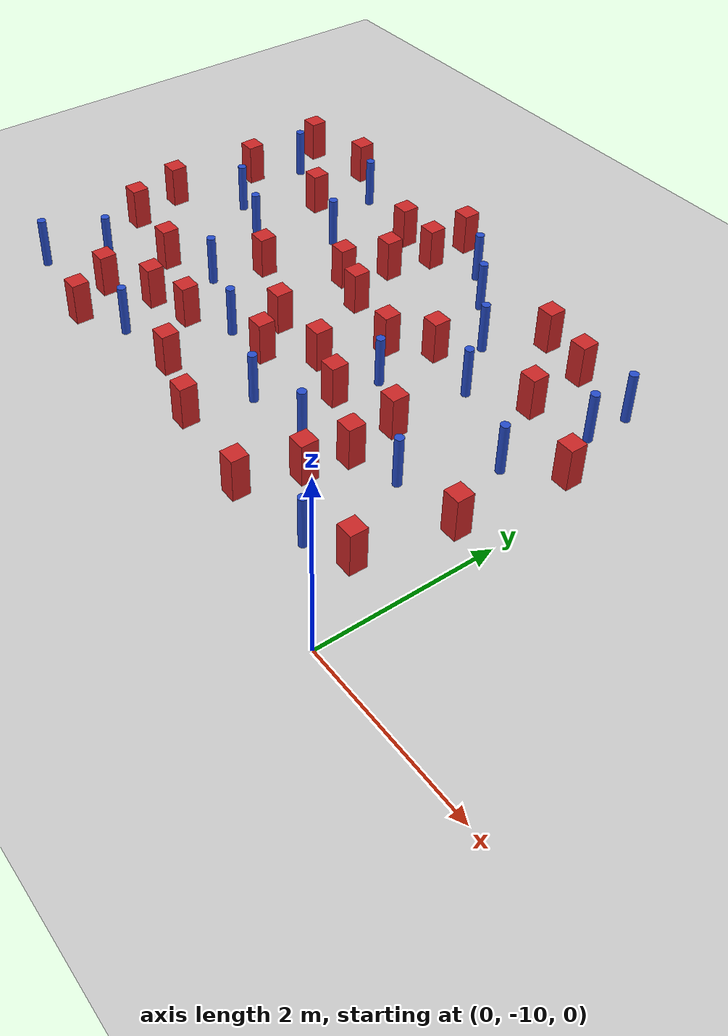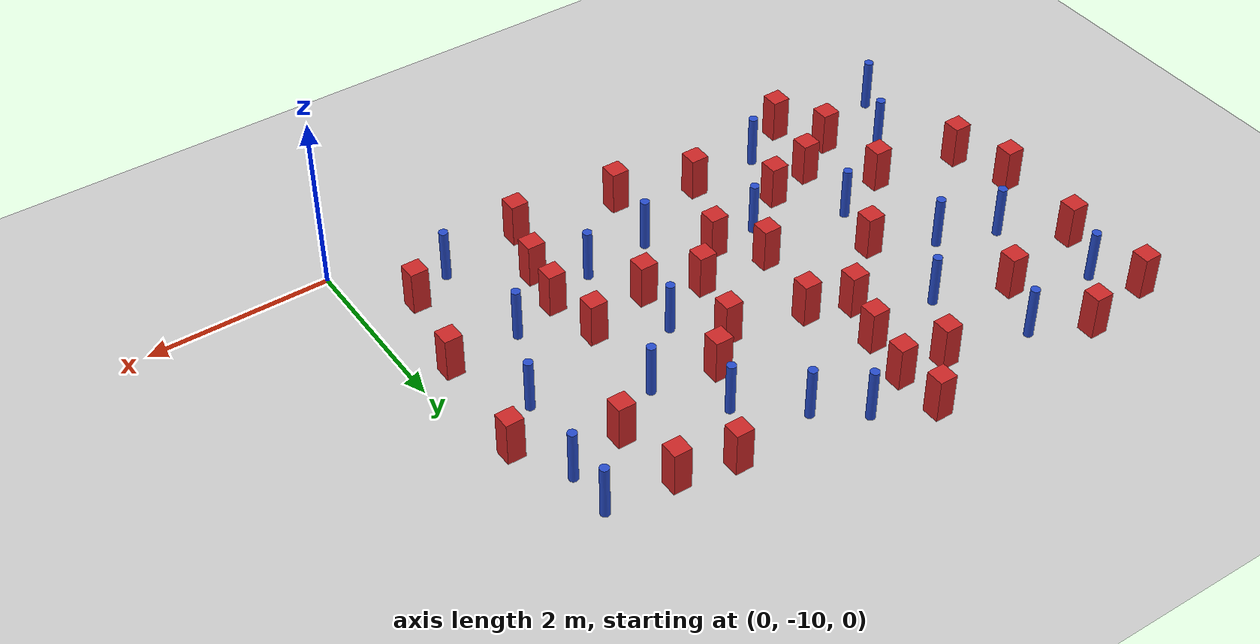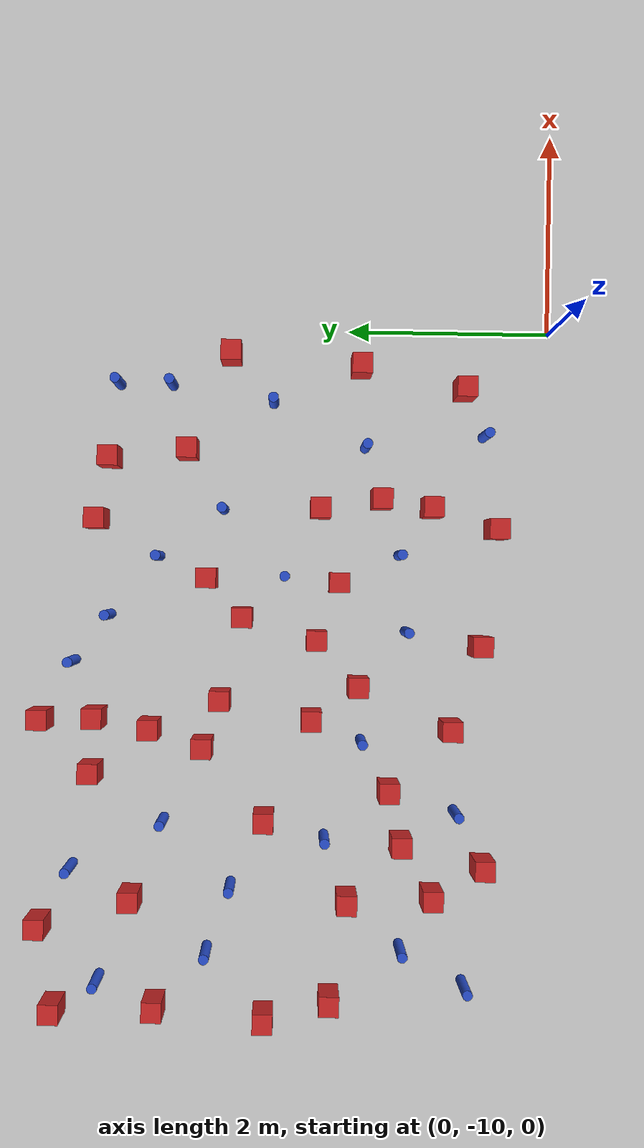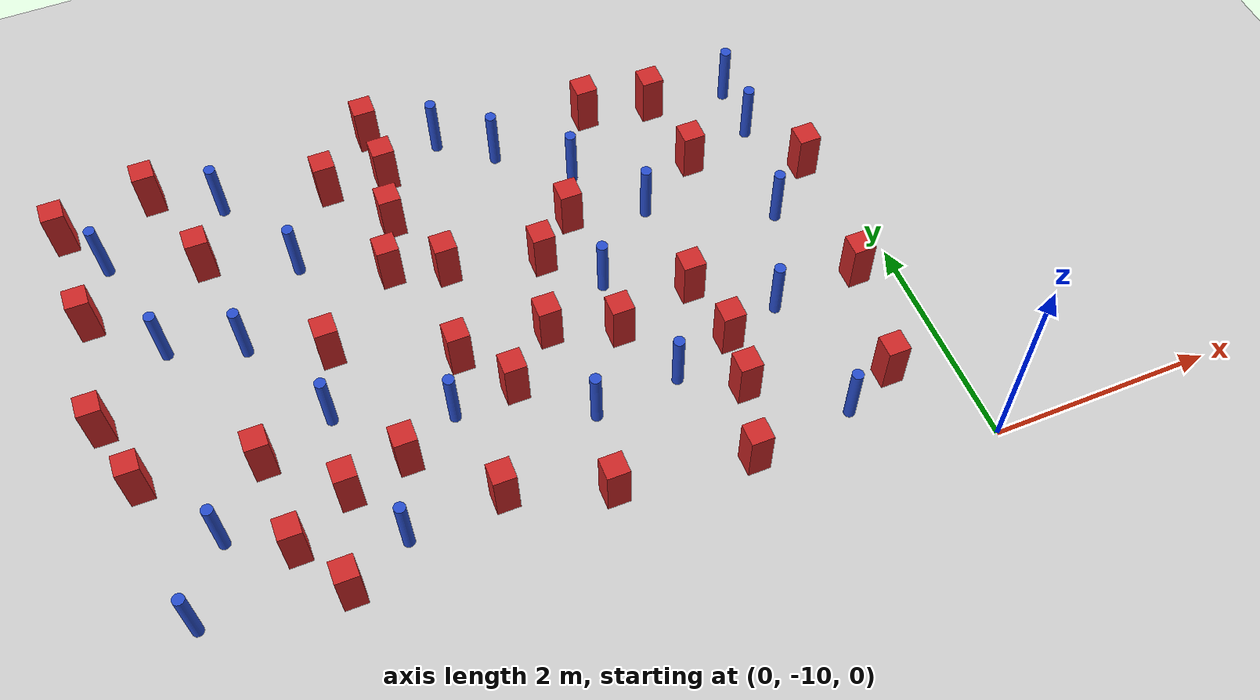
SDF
<sdf version="1.6">
 <world name="default">
  <model name="ground_plane">
   <static>1</static>
   <link name="link">
    <collision name="collision">
     <geometry><plane><normal>0 0 1</normal><size>100 100</size></plane></geometry>
     <surface><friction><ode><mu>100</mu><mu2>50</mu2></ode></friction></surface>
    </collision>
    <visual name="visual">
     <cast_shadows>0</cast_shadows>
     <geometry><plane><normal>0 0 1</normal><size>100 100</size></plane></geometry>
     <material>
      <ambient>1.0 1.0 1.0 1.0</ambient>
      <diffuse>0.8 0.8 0.8 1.0</diffuse>
      <specular>0.01 0.01 0.01 1.000000</specular>
     </material>
    </visual>
   </link>
  </model>
  <model name="square_post_obstacle3">
   <static>true</static>
   <pose>-1.93206219649 -5.51208755053 -6.11067671241e-07 -5.50515727128e-06 -8.79689657224e-07 2.37013304536e-05</pose>
   <link name="link">
    <pose>0 0 0.25 0 -0 0</pose>
    <inertial>
     <mass>100</mass>
     <inertia>
      <ixx>0.166667</ixx>
      <ixy>0</ixy>
      <ixz>0</ixz>
      <iyy>0.166667</iyy>
      <iyz>0</iyz>
      <izz>0.166667</izz>
     </inertia>
    </inertial>
    <collision name="collision"><geometry><box><size>.2 .2 .5</size></box></geometry></collision>
    <visual name="visual">
     <geometry><box><size>.2 .2 .5</size></box></geometry>
     <material>
      <script><name>Gazebo/Red</name><uri>file://media/materials/scripts/gazebo.material</uri></script>
     </material>
    </visual>
   </link>
  </model>
  <model name="pole_obstacle5">
   <static>true</static>
   <pose>-2.47776814375 -7.39199694764 -9.47619616065e-06 5.49618799738e-07 2.3631041406e-07 -1.55090534801e-07</pose>
   <link name="link">
    <pose>0 0 0.3 0 -0 0</pose>
    <inertial>
     <mass>1</mass>
     <inertia><ixx>0.145833</ixx><ixy>0</ixy><ixz>0</ixz><iyy>0.145833</iyy><iyz>0</iyz><izz>0.125</izz></inertia>
    </inertial>
    <collision name="collision">
     <geometry><cylinder><radius>0.05</radius><length>.6</length></cylinder></geometry>
    </collision>
    <visual name="visual">
     <geometry><cylinder><radius>0.05</radius><length>.6</length></cylinder></geometry>
     <material>
      <script><name>Gazebo/Blue</name><uri>file://media/materials/scripts/gazebo.material</uri></script>
     </material>
    </visual>
   </link>
  </model>
  <model name="square_post_obstacle7">
   <static>true</static>
   <pose>-3.14198936827 -9.34320137759 -6.11067671241e-07 -5.50515727128e-06 -8.79689657224e-07 2.37013304536e-05</pose>
   <link name="link">
    <pose>0 0 0.25 0 -0 0</pose>
    <inertial>
     <mass>100</mass>
     <inertia>
      <ixx>0.166667</ixx>
      <ixy>0</ixy>
      <ixz>0</ixz>
      <iyy>0.166667</iyy>
      <iyz>0</iyz>
      <izz>0.166667</izz>
     </inertia>
    </inertial>
    <collision name="collision"><geometry><box><size>.2 .2 .5</size></box></geometry></collision>
    <visual name="visual">
     <geometry><box><size>.2 .2 .5</size></box></geometry>
     <material>
      <script><name>Gazebo/Red</name><uri>file://media/materials/scripts/gazebo.material</uri></script>
     </material>
    </visual>
   </link>
  </model>
  <model name="square_post_obstacle8">
   <static>true</static>
   <pose>-6.66816803938 -7.88810534937 -6.11067671241e-07 -5.50515727128e-06 -8.79689657224e-07 2.37013304536e-05</pose>
   <link name="link">
    <pose>0 0 0.25 0 -0 0</pose>
    <inertial>
     <mass>100</mass>
     <inertia>
      <ixx>0.166667</ixx>
      <ixy>0</ixy>
      <ixz>0</ixz>
      <iyy>0.166667</iyy>
      <iyz>0</iyz>
      <izz>0.166667</izz>
     </inertia>
    </inertial>
    <collision name="collision"><geometry><box><size>.2 .2 .5</size></box></geometry></collision>
    <visual name="visual">
     <geometry><box><size>.2 .2 .5</size></box></geometry>
     <material>
      <script><name>Gazebo/Red</name><uri>file://media/materials/scripts/gazebo.material</uri></script>
     </material>
    </visual>
   </link>
  </model>
  <model name="square_post_obstacle19">
   <static>true</static>
   <pose>-0.263909073684 -6.82775434826 -6.11067671241e-07 -5.50515727128e-06 -8.79689657224e-07 2.37013304536e-05</pose>
   <link name="link">
    <pose>0 0 0.25 0 -0 0</pose>
    <inertial>
     <mass>100</mass>
     <inertia>
      <ixx>0.166667</ixx>
      <ixy>0</ixy>
      <ixz>0</ixz>
      <iyy>0.166667</iyy>
      <iyz>0</iyz>
      <izz>0.166667</izz>
     </inertia>
    </inertial>
    <collision name="collision"><geometry><box><size>.2 .2 .5</size></box></geometry></collision>
    <visual name="visual">
     <geometry><box><size>.2 .2 .5</size></box></geometry>
     <material>
      <script><name>Gazebo/Red</name><uri>file://media/materials/scripts/gazebo.material</uri></script>
     </material>
    </visual>
   </link>
  </model>
  <model name="square_post_obstacle23">
   <static>true</static>
   <pose>-5.11469732332 -8.57926721754 -6.11067671241e-07 -5.50515727128e-06 -8.79689657224e-07 2.37013304536e-05</pose>
   <link name="link">
    <pose>0 0 0.25 0 -0 0</pose>
    <inertial>
     <mass>100</mass>
     <inertia>
      <ixx>0.166667</ixx>
      <ixy>0</ixy>
      <ixz>0</ixz>
      <iyy>0.166667</iyy>
      <iyz>0</iyz>
      <izz>0.166667</izz>
     </inertia>
    </inertial>
    <collision name="collision"><geometry><box><size>.2 .2 .5</size></box></geometry></collision>
    <visual name="visual">
     <geometry><box><size>.2 .2 .5</size></box></geometry>
     <material>
      <script><name>Gazebo/Red</name><uri>file://media/materials/scripts/gazebo.material</uri></script>
     </material>
    </visual>
   </link>
  </model>
  <model name="square_post_obstacle25">
   <static>true</static>
   <pose>-6.75272998831 -6.15883968848 -6.11067671241e-07 -5.50515727128e-06 -8.79689657224e-07 2.37013304536e-05</pose>
   <link name="link">
    <pose>0 0 0.25 0 -0 0</pose>
    <inertial>
     <mass>100</mass>
     <inertia>
      <ixx>0.166667</ixx>
      <ixy>0</ixy>
      <ixz>0</ixz>
      <iyy>0.166667</iyy>
      <iyz>0</iyz>
      <izz>0.166667</izz>
     </inertia>
    </inertial>
    <collision name="collision"><geometry><box><size>.2 .2 .5</size></box></geometry></collision>
    <visual name="visual">
     <geometry><box><size>.2 .2 .5</size></box></geometry>
     <material>
      <script><name>Gazebo/Red</name><uri>file://media/materials/scripts/gazebo.material</uri></script>
     </material>
    </visual>
   </link>
  </model>
  <model name="square_post_obstacle33">
   <static>true</static>
   <pose>-5.68967007957 -5.90728891235 -6.11067671241e-07 -5.50515727128e-06 -8.79689657224e-07 2.37013304536e-05</pose>
   <link name="link">
    <pose>0 0 0.25 0 -0 0</pose>
    <inertial>
     <mass>100</mass>
     <inertia>
      <ixx>0.166667</ixx>
      <ixy>0</ixy>
      <ixz>0</ixz>
      <iyy>0.166667</iyy>
      <iyz>0</iyz>
      <izz>0.166667</izz>
     </inertia>
    </inertial>
    <collision name="collision"><geometry><box><size>.2 .2 .5</size></box></geometry></collision>
    <visual name="visual">
     <geometry><box><size>.2 .2 .5</size></box></geometry>
     <material>
      <script><name>Gazebo/Red</name><uri>file://media/materials/scripts/gazebo.material</uri></script>
     </material>
    </visual>
   </link>
  </model>
  <model name="square_post_obstacle37">
   <static>true</static>
   <pose>-4.89847939224 -7.21826962147 -6.11067671241e-07 -5.50515727128e-06 -8.79689657224e-07 2.37013304536e-05</pose>
   <link name="link">
    <pose>0 0 0.25 0 -0 0</pose>
    <inertial>
     <mass>100</mass>
     <inertia>
      <ixx>0.166667</ixx>
      <ixy>0</ixy>
      <ixz>0</ixz>
      <iyy>0.166667</iyy>
      <iyz>0</iyz>
      <izz>0.166667</izz>
     </inertia>
    </inertial>
    <collision name="collision"><geometry><box><size>.2 .2 .5</size></box></geometry></collision>
    <visual name="visual">
     <geometry><box><size>.2 .2 .5</size></box></geometry>
     <material>
      <script><name>Gazebo/Red</name><uri>file://media/materials/scripts/gazebo.material</uri></script>
     </material>
    </visual>
   </link>
  </model>
  <model name="pole_obstacle41">
   <static>true</static>
   <pose>-3.34890756261 -5.2980649631 -9.47619616065e-06 5.49618799738e-07 2.3631041406e-07 -1.55090534801e-07</pose>
   <link name="link">
    <pose>0 0 0.3 0 -0 0</pose>
    <inertial>
     <mass>1</mass>
     <inertia><ixx>0.145833</ixx><ixy>0</ixy><ixz>0</ixz><iyy>0.145833</iyy><iyz>0</iyz><izz>0.125</izz></inertia>
    </inertial>
    <collision name="collision">
     <geometry><cylinder><radius>0.05</radius><length>.6</length></cylinder></geometry>
    </collision>
    <visual name="visual">
     <geometry><cylinder><radius>0.05</radius><length>.6</length></cylinder></geometry>
     <material>
      <script><name>Gazebo/Blue</name><uri>file://media/materials/scripts/gazebo.material</uri></script>
     </material>
    </visual>
   </link>
  </model>
  <model name="square_post_obstacle47">
   <static>true</static>
   <pose>-3.89732486386 -7.67506322578 -6.11067671241e-07 -5.50515727128e-06 -8.79689657224e-07 2.37013304536e-05</pose>
   <link name="link">
    <pose>0 0 0.25 0 -0 0</pose>
    <inertial>
     <mass>100</mass>
     <inertia>
      <ixx>0.166667</ixx>
      <ixy>0</ixy>
      <ixz>0</ixz>
      <iyy>0.166667</iyy>
      <iyz>0</iyz>
      <izz>0.166667</izz>
     </inertia>
    </inertial>
    <collision name="collision"><geometry><box><size>.2 .2 .5</size></box></geometry></collision>
    <visual name="visual">
     <geometry><box><size>.2 .2 .5</size></box></geometry>
     <material>
      <script><name>Gazebo/Red</name><uri>file://media/materials/scripts/gazebo.material</uri></script>
     </material>
    </visual>
   </link>
  </model>
  <model name="square_post_obstacle55">
   <static>true</static>
   <pose>-4.44354721315 -5.49498239826 -6.11067671241e-07 -5.50515727128e-06 -8.79689657224e-07 2.37013304536e-05</pose>
   <link name="link">
    <pose>0 0 0.25 0 -0 0</pose>
    <inertial>
     <mass>100</mass>
     <inertia>
      <ixx>0.166667</ixx>
      <ixy>0</ixy>
      <ixz>0</ixz>
      <iyy>0.166667</iyy>
      <iyz>0</iyz>
      <izz>0.166667</izz>
     </inertia>
    </inertial>
    <collision name="collision"><geometry><box><size>.2 .2 .5</size></box></geometry></collision>
    <visual name="visual">
     <geometry><box><size>.2 .2 .5</size></box></geometry>
     <material>
      <script><name>Gazebo/Red</name><uri>file://media/materials/scripts/gazebo.material</uri></script>
     </material>
    </visual>
   </link>
  </model>
  <model name="square_post_obstacle59">
   <static>true</static>
   <pose>-3.71160512228 -6.7673366094 -6.11067671241e-07 -5.50515727128e-06 -8.79689657224e-07 2.37013304536e-05</pose>
   <link name="link">
    <pose>0 0 0.25 0 -0 0</pose>
    <inertial>
     <mass>100</mass>
     <inertia>
      <ixx>0.166667</ixx>
      <ixy>0</ixy>
      <ixz>0</ixz>
      <iyy>0.166667</iyy>
      <iyz>0</iyz>
      <izz>0.166667</izz>
     </inertia>
    </inertial>
    <collision name="collision"><geometry><box><size>.2 .2 .5</size></box></geometry></collision>
    <visual name="visual">
     <geometry><box><size>.2 .2 .5</size></box></geometry>
     <material>
      <script><name>Gazebo/Red</name><uri>file://media/materials/scripts/gazebo.material</uri></script>
     </material>
    </visual>
   </link>
  </model>
  <model name="pole_obstacle59">
   <static>true</static>
   <pose>-6.2016189769 -6.66687899059 -9.47619616065e-06 5.49618799737e-07 2.36310414037e-07 -1.55090534814e-07</pose>
   <link name="link">
    <pose>0 0 0.3 0 -0 0</pose>
    <inertial>
     <mass>1</mass>
     <inertia><ixx>0.145833</ixx><ixy>0</ixy><ixz>0</ixz><iyy>0.145833</iyy><iyz>0</iyz><izz>0.125</izz></inertia>
    </inertial>
    <collision name="collision">
     <geometry><cylinder><radius>0.05</radius><length>.6</length></cylinder></geometry>
    </collision>
    <visual name="visual">
     <geometry><cylinder><radius>0.05</radius><length>.6</length></cylinder></geometry>
     <material>
      <script><name>Gazebo/Blue</name><uri>file://media/materials/scripts/gazebo.material</uri></script>
     </material>
    </visual>
   </link>
  </model>
  <model name="pole_obstacle62">
   <static>true</static>
   <pose>-1.81665289645 -6.76948565535 -9.47619616065e-06 5.49618799737e-07 2.36310414061e-07 -1.550905348e-07</pose>
   <link name="link">
    <pose>0 0 0.3 0 -0 0</pose>
    <inertial>
     <mass>1</mass>
     <inertia><ixx>0.145833</ixx><ixy>0</ixy><ixz>0</ixz><iyy>0.145833</iyy><iyz>0</iyz><izz>0.125</izz></inertia>
    </inertial>
    <collision name="collision">
     <geometry><cylinder><radius>0.05</radius><length>.6</length></cylinder></geometry>
    </collision>
    <visual name="visual">
     <geometry><cylinder><radius>0.05</radius><length>.6</length></cylinder></geometry>
     <material>
      <script><name>Gazebo/Blue</name><uri>file://media/materials/scripts/gazebo.material</uri></script>
     </material>
    </visual>
   </link>
  </model>
  <model name="pole_obstacle64">
   <static>true</static>
   <pose>-2.88494007251 -5.64644811501 -9.47619616065e-06 5.49618799738e-07 2.3631041406e-07 -1.55090534801e-07</pose>
   <link name="link">
    <pose>0 0 0.3 0 -0 0</pose>
    <inertial>
     <mass>1</mass>
     <inertia><ixx>0.145833</ixx><ixy>0</ixy><ixz>0</ixz><iyy>0.145833</iyy><iyz>0</iyz><izz>0.125</izz></inertia>
    </inertial>
    <collision name="collision">
     <geometry><cylinder><radius>0.05</radius><length>.6</length></cylinder></geometry>
    </collision>
    <visual name="visual">
     <geometry><cylinder><radius>0.05</radius><length>.6</length></cylinder></geometry>
     <material>
      <script><name>Gazebo/Blue</name><uri>file://media/materials/scripts/gazebo.material</uri></script>
     </material>
    </visual>
   </link>
  </model>
  <model name="square_post_obstacle73">
   <static>true</static>
   <pose>-6.84965876361 -7.24200055629 -6.11067671241e-07 -5.50515727128e-06 -8.79689657224e-07 2.37013304536e-05</pose>
   <link name="link">
    <pose>0 0 0.25 0 -0 0</pose>
    <inertial>
     <mass>100</mass>
     <inertia>
      <ixx>0.166667</ixx>
      <ixy>0</ixy>
      <ixz>0</ixz>
      <iyy>0.166667</iyy>
      <iyz>0</iyz>
      <izz>0.166667</izz>
     </inertia>
    </inertial>
    <collision name="collision"><geometry><box><size>.2 .2 .5</size></box></geometry></collision>
    <visual name="visual">
     <geometry><box><size>.2 .2 .5</size></box></geometry>
     <material>
      <script><name>Gazebo/Red</name><uri>file://media/materials/scripts/gazebo.material</uri></script>
     </material>
    </visual>
   </link>
  </model>
  <model name="pole_obstacle71">
   <static>true</static>
   <pose>-3.01207736915 -8.60900561667 -9.4761961606e-06 5.49618799729e-07 2.36310414e-07 -1.55090534824e-07</pose>
   <link name="link">
    <pose>0 0 0.3 0 -0 0</pose>
    <inertial>
     <mass>1</mass>
     <inertia><ixx>0.145833</ixx><ixy>0</ixy><ixz>0</ixz><iyy>0.145833</iyy><iyz>0</iyz><izz>0.125</izz></inertia>
    </inertial>
    <collision name="collision">
     <geometry><cylinder><radius>0.05</radius><length>.6</length></cylinder></geometry>
    </collision>
    <visual name="visual">
     <geometry><cylinder><radius>0.05</radius><length>.6</length></cylinder></geometry>
     <material>
      <script><name>Gazebo/Blue</name><uri>file://media/materials/scripts/gazebo.material</uri></script>
     </material>
    </visual>
   </link>
  </model>
  <model name="square_post_obstacle87">
   <static>true</static>
   <pose>-2.5061601768 -6.61781632012 -6.11067671241e-07 -5.50515727128e-06 -8.79689657224e-07 2.37013304536e-05</pose>
   <link name="link">
    <pose>0 0 0.25 0 -0 0</pose>
    <inertial>
     <mass>100</mass>
     <inertia>
      <ixx>0.166667</ixx>
      <ixy>0</ixy>
      <ixz>0</ixz>
      <iyy>0.166667</iyy>
      <iyz>0</iyz>
      <izz>0.166667</izz>
     </inertia>
    </inertial>
    <collision name="collision"><geometry><box><size>.2 .2 .5</size></box></geometry></collision>
    <visual name="visual">
     <geometry><box><size>.2 .2 .5</size></box></geometry>
     <material>
      <script><name>Gazebo/Red</name><uri>file://media/materials/scripts/gazebo.material</uri></script>
     </material>
    </visual>
   </link>
  </model>
  <model name="square_post_obstacle88">
   <static>true</static>
   <pose>-3.56120038111 -8.13306552315 -6.11067671241e-07 -5.50515727128e-06 -8.79689657224e-07 2.37013304536e-05</pose>
   <link name="link">
    <pose>0 0 0.25 0 -0 0</pose>
    <inertial>
     <mass>100</mass>
     <inertia>
      <ixx>0.166667</ixx>
      <ixy>0</ixy>
      <ixz>0</ixz>
      <iyy>0.166667</iyy>
      <iyz>0</iyz>
      <izz>0.166667</izz>
     </inertia>
    </inertial>
    <collision name="collision"><geometry><box><size>.2 .2 .5</size></box></geometry></collision>
    <visual name="visual">
     <geometry><box><size>.2 .2 .5</size></box></geometry>
     <material>
      <script><name>Gazebo/Red</name><uri>file://media/materials/scripts/gazebo.material</uri></script>
     </material>
    </visual>
   </link>
  </model>
  <model name="square_post_obstacle90">
   <static>true</static>
   <pose>-0.586633205708 -9.15444887422 -6.11067671241e-07 -5.50515727128e-06 -8.79689657224e-07 2.37013304536e-05</pose>
   <link name="link">
    <pose>0 0 0.25 0 -0 0</pose>
    <inertial>
     <mass>100</mass>
     <inertia>
      <ixx>0.166667</ixx>
      <ixy>0</ixy>
      <ixz>0</ixz>
      <iyy>0.166667</iyy>
      <iyz>0</iyz>
      <izz>0.166667</izz>
     </inertia>
    </inertial>
    <collision name="collision"><geometry><box><size>.2 .2 .5</size></box></geometry></collision>
    <visual name="visual">
     <geometry><box><size>.2 .2 .5</size></box></geometry>
     <material>
      <script><name>Gazebo/Red</name><uri>file://media/materials/scripts/gazebo.material</uri></script>
     </material>
    </visual>
   </link>
  </model>
  <model name="square_post_obstacle91">
   <static>true</static>
   <pose>-2.53233264799 -7.93076892544 -6.11067671241e-07 -5.50515727128e-06 -8.79689657224e-07 2.37013304536e-05</pose>
   <link name="link">
    <pose>0 0 0.25 0 -0 0</pose>
    <inertial>
     <mass>100</mass>
     <inertia>
      <ixx>0.166667</ixx>
      <ixy>0</ixy>
      <ixz>0</ixz>
      <iyy>0.166667</iyy>
      <iyz>0</iyz>
      <izz>0.166667</izz>
     </inertia>
    </inertial>
    <collision name="collision"><geometry><box><size>.2 .2 .5</size></box></geometry></collision>
    <visual name="visual">
     <geometry><box><size>.2 .2 .5</size></box></geometry>
     <material>
      <script><name>Gazebo/Red</name><uri>file://media/materials/scripts/gazebo.material</uri></script>
     </material>
    </visual>
   </link>
  </model>
  <model name="square_post_obstacle93">
   <static>true</static>
   <pose>-3.10860463918 -7.71394245742 -6.11067671241e-07 -5.50515727128e-06 -8.79689657224e-07 2.37013304536e-05</pose>
   <link name="link">
    <pose>0 0 0.25 0 -0 0</pose>
    <inertial>
     <mass>100</mass>
     <inertia>
      <ixx>0.166667</ixx>
      <ixy>0</ixy>
      <ixz>0</ixz>
      <iyy>0.166667</iyy>
      <iyz>0</iyz>
      <izz>0.166667</izz>
     </inertia>
    </inertial>
    <collision name="collision"><geometry><box><size>.2 .2 .5</size></box></geometry></collision>
    <visual name="visual">
     <geometry><box><size>.2 .2 .5</size></box></geometry>
     <material>
      <script><name>Gazebo/Red</name><uri>file://media/materials/scripts/gazebo.material</uri></script>
     </material>
    </visual>
   </link>
  </model>
  <model name="pole_obstacle107">
   <static>true</static>
   <pose>-4.10522508592 -8.17366981902 -9.47619616065e-06 5.49618799737e-07 2.36310414065e-07 -1.55090534796e-07</pose>
   <link name="link">
    <pose>0 0 0.3 0 -0 0</pose>
    <inertial>
     <mass>1</mass>
     <inertia><ixx>0.145833</ixx><ixy>0</ixy><ixz>0</ixz><iyy>0.145833</iyy><iyz>0</iyz><izz>0.125</izz></inertia>
    </inertial>
    <collision name="collision">
     <geometry><cylinder><radius>0.05</radius><length>.6</length></cylinder></geometry>
    </collision>
    <visual name="visual">
     <geometry><cylinder><radius>0.05</radius><length>.6</length></cylinder></geometry>
     <material>
      <script><name>Gazebo/Blue</name><uri>file://media/materials/scripts/gazebo.material</uri></script>
     </material>
    </visual>
   </link>
  </model>
  <model name="pole_obstacle108">
   <static>true</static>
   <pose>-6.15178244897 -8.58926774486 -9.47619616065e-06 5.49618799737e-07 2.36310414065e-07 -1.55090534796e-07</pose>
   <link name="link">
    <pose>0 0 0.3 0 -0 0</pose>
    <inertial>
     <mass>1</mass>
     <inertia><ixx>0.145833</ixx><ixy>0</ixy><ixz>0</ixz><iyy>0.145833</iyy><iyz>0</iyz><izz>0.125</izz></inertia>
    </inertial>
    <collision name="collision">
     <geometry><cylinder><radius>0.05</radius><length>.6</length></cylinder></geometry>
    </collision>
    <visual name="visual">
     <geometry><cylinder><radius>0.05</radius><length>.6</length></cylinder></geometry>
     <material>
      <script><name>Gazebo/Blue</name><uri>file://media/materials/scripts/gazebo.material</uri></script>
     </material>
    </visual>
   </link>
  </model>
  <model name="square_post_obstacle97">
   <static>true</static>
   <pose>-0.371252904621 -8.12083245525 -6.11067671241e-07 -5.50515727128e-06 -8.79689657224e-07 2.37013304536e-05</pose>
   <link name="link">
    <pose>0 0 0.25 0 -0 0</pose>
    <inertial>
     <mass>100</mass>
     <inertia>
      <ixx>0.166667</ixx>
      <ixy>0</ixy>
      <ixz>0</ixz>
      <iyy>0.166667</iyy>
      <iyz>0</iyz>
      <izz>0.166667</izz>
     </inertia>
    </inertial>
    <collision name="collision"><geometry><box><size>.2 .2 .5</size></box></geometry></collision>
    <visual name="visual">
     <geometry><box><size>.2 .2 .5</size></box></geometry>
     <material>
      <script><name>Gazebo/Red</name><uri>file://media/materials/scripts/gazebo.material</uri></script>
     </material>
    </visual>
   </link>
  </model>
  <model name="pole_obstacle112">
   <static>true</static>
   <pose>-0.571184140145 -5.70953010815 -9.47619616065e-06 5.49618799737e-07 2.36310414065e-07 -1.55090534796e-07</pose>
   <link name="link">
    <pose>0 0 0.3 0 -0 0</pose>
    <inertial>
     <mass>1</mass>
     <inertia><ixx>0.145833</ixx><ixy>0</ixy><ixz>0</ixz><iyy>0.145833</iyy><iyz>0</iyz><izz>0.125</izz></inertia>
    </inertial>
    <collision name="collision">
     <geometry><cylinder><radius>0.05</radius><length>.6</length></cylinder></geometry>
    </collision>
    <visual name="visual">
     <geometry><cylinder><radius>0.05</radius><length>.6</length></cylinder></geometry>
     <material>
      <script><name>Gazebo/Blue</name><uri>file://media/materials/scripts/gazebo.material</uri></script>
     </material>
    </visual>
   </link>
  </model>
  <model name="pole_obstacle118">
   <static>true</static>
   <pose>-6.50005966742 -5.59088299626 -9.47619616065e-06 5.49618799737e-07 2.36310414037e-07 -1.55090534814e-07</pose>
   <link name="link">
    <pose>0 0 0.3 0 -0 0</pose>
    <inertial>
     <mass>1</mass>
     <inertia><ixx>0.145833</ixx><ixy>0</ixy><ixz>0</ixz><iyy>0.145833</iyy><iyz>0</iyz><izz>0.125</izz></inertia>
    </inertial>
    <collision name="collision">
     <geometry><cylinder><radius>0.05</radius><length>.6</length></cylinder></geometry>
    </collision>
    <visual name="visual">
     <geometry><cylinder><radius>0.05</radius><length>.6</length></cylinder></geometry>
     <material>
      <script><name>Gazebo/Blue</name><uri>file://media/materials/scripts/gazebo.material</uri></script>
     </material>
    </visual>
   </link>
  </model>
  <model name="square_post_obstacle104">
   <static>true</static>
   <pose>-4.00694835068 -6.07309863838 -6.11067671241e-07 -5.50515727128e-06 -8.79689657224e-07 2.37013304536e-05</pose>
   <link name="link">
    <pose>0 0 0.25 0 -0 0</pose>
    <inertial>
     <mass>100</mass>
     <inertia>
      <ixx>0.166667</ixx>
      <ixy>0</ixy>
      <ixz>0</ixz>
      <iyy>0.166667</iyy>
      <iyz>0</iyz>
      <izz>0.166667</izz>
     </inertia>
    </inertial>
    <collision name="collision"><geometry><box><size>.2 .2 .5</size></box></geometry></collision>
    <visual name="visual">
     <geometry><box><size>.2 .2 .5</size></box></geometry>
     <material>
      <script><name>Gazebo/Red</name><uri>file://media/materials/scripts/gazebo.material</uri></script>
     </material>
    </visual>
   </link>
  </model>
  <model name="pole_obstacle119">
   <static>true</static>
   <pose>-6.50457305357 -9.22390074663 -9.47619616065e-06 5.49618799737e-07 2.36310414065e-07 -1.55090534796e-07</pose>
   <link name="link">
    <pose>0 0 0.3 0 -0 0</pose>
    <inertial>
     <mass>1</mass>
     <inertia><ixx>0.145833</ixx><ixy>0</ixy><ixz>0</ixz><iyy>0.145833</iyy><iyz>0</iyz><izz>0.125</izz></inertia>
    </inertial>
    <collision name="collision">
     <geometry><cylinder><radius>0.05</radius><length>.6</length></cylinder></geometry>
    </collision>
    <visual name="visual">
     <geometry><cylinder><radius>0.05</radius><length>.6</length></cylinder></geometry>
     <material>
      <script><name>Gazebo/Blue</name><uri>file://media/materials/scripts/gazebo.material</uri></script>
     </material>
    </visual>
   </link>
  </model>
  <model name="square_post_obstacle112">
   <static>true</static>
   <pose>-5.96624521491 -4.99618184917 -6.11067671241e-07 -5.50515727128e-06 -8.79689657224e-07 2.37013304536e-05</pose>
   <link name="link">
    <pose>0 0 0.25 0 -0 0</pose>
    <inertial>
     <mass>100</mass>
     <inertia>
      <ixx>0.166667</ixx>
      <ixy>0</ixy>
      <ixz>0</ixz>
      <iyy>0.166667</iyy>
      <iyz>0</iyz>
      <izz>0.166667</izz>
     </inertia>
    </inertial>
    <collision name="collision"><geometry><box><size>.2 .2 .5</size></box></geometry></collision>
    <visual name="visual">
     <geometry><box><size>.2 .2 .5</size></box></geometry>
     <material>
      <script><name>Gazebo/Red</name><uri>file://media/materials/scripts/gazebo.material</uri></script>
     </material>
    </visual>
   </link>
  </model>
  <model name="pole_obstacle131">
   <static>true</static>
   <pose>-0.738270984419 -7.2540495079 -9.47619616065e-06 5.49618799737e-07 2.36310414065e-07 -1.55090534796e-07</pose>
   <link name="link">
    <pose>0 0 0.3 0 -0 0</pose>
    <inertial>
     <mass>1</mass>
     <inertia><ixx>0.145833</ixx><ixy>0</ixy><ixz>0</ixz><iyy>0.145833</iyy><iyz>0</iyz><izz>0.125</izz></inertia>
    </inertial>
    <collision name="collision">
     <geometry><cylinder><radius>0.05</radius><length>.6</length></cylinder></geometry>
    </collision>
    <visual name="visual">
     <geometry><cylinder><radius>0.05</radius><length>.6</length></cylinder></geometry>
     <material>
      <script><name>Gazebo/Blue</name><uri>file://media/materials/scripts/gazebo.material</uri></script>
     </material>
    </visual>
   </link>
  </model>
  <model name="pole_obstacle135">
   <static>true</static>
   <pose>-5.06604489822 -7.82079231293 -9.47619616065e-06 5.49618799737e-07 2.36310414037e-07 -1.55090534814e-07</pose>
   <link name="link">
    <pose>0 0 0.3 0 -0 0</pose>
    <inertial>
     <mass>1</mass>
     <inertia><ixx>0.145833</ixx><ixy>0</ixy><ixz>0</ixz><iyy>0.145833</iyy><iyz>0</iyz><izz>0.125</izz></inertia>
    </inertial>
    <collision name="collision">
     <geometry><cylinder><radius>0.05</radius><length>.6</length></cylinder></geometry>
    </collision>
    <visual name="visual">
     <geometry><cylinder><radius>0.05</radius><length>.6</length></cylinder></geometry>
     <material>
      <script><name>Gazebo/Blue</name><uri>file://media/materials/scripts/gazebo.material</uri></script>
     </material>
    </visual>
   </link>
  </model>
  <model name="pole_obstacle138">
   <static>true</static>
   <pose>-2.25002577621 -8.53282463393 -9.4761961606e-06 5.49618799729e-07 2.36310414e-07 -1.55090534824e-07</pose>
   <link name="link">
    <pose>0 0 0.3 0 -0 0</pose>
    <inertial>
     <mass>1</mass>
     <inertia><ixx>0.145833</ixx><ixy>0</ixy><ixz>0</ixz><iyy>0.145833</iyy><iyz>0</iyz><izz>0.125</izz></inertia>
    </inertial>
    <collision name="collision">
     <geometry><cylinder><radius>0.05</radius><length>.6</length></cylinder></geometry>
    </collision>
    <visual name="visual">
     <geometry><cylinder><radius>0.05</radius><length>.6</length></cylinder></geometry>
     <material>
      <script><name>Gazebo/Blue</name><uri>file://media/materials/scripts/gazebo.material</uri></script>
     </material>
    </visual>
   </link>
  </model>
  <model name="square_post_obstacle123">
   <static>true</static>
   <pose>-1.77254015879 -8.84442417759 -6.11067671241e-07 -5.50515727128e-06 -8.79689657224e-07 2.37013304536e-05</pose>
   <link name="link">
    <pose>0 0 0.25 0 -0 0</pose>
    <inertial>
     <mass>100</mass>
     <inertia>
      <ixx>0.166667</ixx>
      <ixy>0</ixy>
      <ixz>0</ixz>
      <iyy>0.166667</iyy>
      <iyz>0</iyz>
      <izz>0.166667</izz>
     </inertia>
    </inertial>
    <collision name="collision"><geometry><box><size>.2 .2 .5</size></box></geometry></collision>
    <visual name="visual">
     <geometry><box><size>.2 .2 .5</size></box></geometry>
     <material>
      <script><name>Gazebo/Red</name><uri>file://media/materials/scripts/gazebo.material</uri></script>
     </material>
    </visual>
   </link>
  </model>
  <model name="square_post_obstacle124">
   <static>true</static>
   <pose>-1.79704869393 -7.7349653933 -6.11067671241e-07 -5.50515727128e-06 -8.79689657224e-07 2.37013304536e-05</pose>
   <link name="link">
    <pose>0 0 0.25 0 -0 0</pose>
    <inertial>
     <mass>100</mass>
     <inertia>
      <ixx>0.166667</ixx>
      <ixy>0</ixy>
      <ixz>0</ixz>
      <iyy>0.166667</iyy>
      <iyz>0</iyz>
      <izz>0.166667</izz>
     </inertia>
    </inertial>
    <collision name="collision"><geometry><box><size>.2 .2 .5</size></box></geometry></collision>
    <visual name="visual">
     <geometry><box><size>.2 .2 .5</size></box></geometry>
     <material>
      <script><name>Gazebo/Red</name><uri>file://media/materials/scripts/gazebo.material</uri></script>
     </material>
    </visual>
   </link>
  </model>
  <model name="pole_obstacle144">
   <static>true</static>
   <pose>-2.29333442323 -6.13170823819 -9.47619616065e-06 5.49618799738e-07 2.3631041406e-07 -1.55090534801e-07</pose>
   <link name="link">
    <pose>0 0 0.3 0 -0 0</pose>
    <inertial>
     <mass>1</mass>
     <inertia><ixx>0.145833</ixx><ixy>0</ixy><ixz>0</ixz><iyy>0.145833</iyy><iyz>0</iyz><izz>0.125</izz></inertia>
    </inertial>
    <collision name="collision">
     <geometry><cylinder><radius>0.05</radius><length>.6</length></cylinder></geometry>
    </collision>
    <visual name="visual">
     <geometry><cylinder><radius>0.05</radius><length>.6</length></cylinder></geometry>
     <material>
      <script><name>Gazebo/Blue</name><uri>file://media/materials/scripts/gazebo.material</uri></script>
     </material>
    </visual>
   </link>
  </model>
  <model name="square_post_obstacle139">
   <static>true</static>
   <pose>-4.58886865327 -8.4499767987 -6.11067671241e-07 -5.50515727128e-06 -8.79689657224e-07 2.37013304536e-05</pose>
   <link name="link">
    <pose>0 0 0.25 0 -0 0</pose>
    <inertial>
     <mass>100</mass>
     <inertia>
      <ixx>0.166667</ixx>
      <ixy>0</ixy>
      <ixz>0</ixz>
      <iyy>0.166667</iyy>
      <iyz>0</iyz>
      <izz>0.166667</izz>
     </inertia>
    </inertial>
    <collision name="collision"><geometry><box><size>.2 .2 .5</size></box></geometry></collision>
    <visual name="visual">
     <geometry><box><size>.2 .2 .5</size></box></geometry>
     <material>
      <script><name>Gazebo/Red</name><uri>file://media/materials/scripts/gazebo.material</uri></script>
     </material>
    </visual>
   </link>
  </model>
  <model name="pole_obstacle149">
   <static>true</static>
   <pose>-5.39214799067 -5.30463104057 -9.47619616065e-06 5.49618799737e-07 2.36310414037e-07 -1.55090534814e-07</pose>
   <link name="link">
    <pose>0 0 0.3 0 -0 0</pose>
    <inertial>
     <mass>1</mass>
     <inertia><ixx>0.145833</ixx><ixy>0</ixy><ixz>0</ixz><iyy>0.145833</iyy><iyz>0</iyz><izz>0.125</izz></inertia>
    </inertial>
    <collision name="collision">
     <geometry><cylinder><radius>0.05</radius><length>.6</length></cylinder></geometry>
    </collision>
    <visual name="visual">
     <geometry><cylinder><radius>0.05</radius><length>.6</length></cylinder></geometry>
     <material>
      <script><name>Gazebo/Blue</name><uri>file://media/materials/scripts/gazebo.material</uri></script>
     </material>
    </visual>
   </link>
  </model>
  <model name="square_post_obstacle143">
   <static>true</static>
   <pose>-6.78973714883 -5.15283509798 -6.11067671241e-07 -5.50515727128e-06 -8.79689657224e-07 2.37013304536e-05</pose>
   <link name="link">
    <pose>0 0 0.25 0 -0 0</pose>
    <inertial>
     <mass>100</mass>
     <inertia>
      <ixx>0.166667</ixx>
      <ixy>0</ixy>
      <ixz>0</ixz>
      <iyy>0.166667</iyy>
      <iyz>0</iyz>
      <izz>0.166667</izz>
     </inertia>
    </inertial>
    <collision name="collision"><geometry><box><size>.2 .2 .5</size></box></geometry></collision>
    <visual name="visual">
     <geometry><box><size>.2 .2 .5</size></box></geometry>
     <material>
      <script><name>Gazebo/Red</name><uri>file://media/materials/scripts/gazebo.material</uri></script>
     </material>
    </visual>
   </link>
  </model>
  <model name="pole_obstacle154">
   <static>true</static>
   <pose>-1.17394172971 -8.17770206202 -9.47619616065e-06 5.49618799737e-07 2.36310414046e-07 -1.55090534809e-07</pose>
   <link name="link">
    <pose>0 0 0.3 0 -0 0</pose>
    <inertial>
     <mass>1</mass>
     <inertia><ixx>0.145833</ixx><ixy>0</ixy><ixz>0</ixz><iyy>0.145833</iyy><iyz>0</iyz><izz>0.125</izz></inertia>
    </inertial>
    <collision name="collision">
     <geometry><cylinder><radius>0.05</radius><length>.6</length></cylinder></geometry>
    </collision>
    <visual name="visual">
     <geometry><cylinder><radius>0.05</radius><length>.6</length></cylinder></geometry>
     <material>
      <script><name>Gazebo/Blue</name><uri>file://media/materials/scripts/gazebo.material</uri></script>
     </material>
    </visual>
   </link>
  </model>
  <model name="square_post_obstacle147">
   <static>true</static>
   <pose>-3.92492702251 -4.98725712589 -6.11067671241e-07 -5.50515727128e-06 -8.79689657224e-07 2.37013304536e-05</pose>
   <link name="link">
    <pose>0 0 0.25 0 -0 0</pose>
    <inertial>
     <mass>100</mass>
     <inertia>
      <ixx>0.166667</ixx>
      <ixy>0</ixy>
      <ixz>0</ixz>
      <iyy>0.166667</iyy>
      <iyz>0</iyz>
      <izz>0.166667</izz>
     </inertia>
    </inertial>
    <collision name="collision"><geometry><box><size>.2 .2 .5</size></box></geometry></collision>
    <visual name="visual">
     <geometry><box><size>.2 .2 .5</size></box></geometry>
     <material>
      <script><name>Gazebo/Red</name><uri>file://media/materials/scripts/gazebo.material</uri></script>
     </material>
    </visual>
   </link>
  </model>
  <model name="square_post_obstacle150">
   <static>true</static>
   <pose>-1.31707774213 -5.63447450237 -6.11067671241e-07 -5.50515727128e-06 -8.79689657224e-07 2.37013304536e-05</pose>
   <link name="link">
    <pose>0 0 0.25 0 -0 0</pose>
    <inertial>
     <mass>100</mass>
     <inertia>
      <ixx>0.166667</ixx>
      <ixy>0</ixy>
      <ixz>0</ixz>
      <iyy>0.166667</iyy>
      <iyz>0</iyz>
      <izz>0.166667</izz>
     </inertia>
    </inertial>
    <collision name="collision"><geometry><box><size>.2 .2 .5</size></box></geometry></collision>
    <visual name="visual">
     <geometry><box><size>.2 .2 .5</size></box></geometry>
     <material>
      <script><name>Gazebo/Red</name><uri>file://media/materials/scripts/gazebo.material</uri></script>
     </material>
    </visual>
   </link>
  </model>
  <model name="square_post_obstacle168">
   <static>true</static>
   <pose>-2.89140423088 -6.97630759278 -6.11067671241e-07 -5.50515727128e-06 -8.79689657224e-07 2.37013304536e-05</pose>
   <link name="link">
    <pose>0 0 0.25 0 -0 0</pose>
    <inertial>
     <mass>100</mass>
     <inertia>
      <ixx>0.166667</ixx>
      <ixy>0</ixy>
      <ixz>0</ixz>
      <iyy>0.166667</iyy>
      <iyz>0</iyz>
      <izz>0.166667</izz>
     </inertia>
    </inertial>
    <collision name="collision"><geometry><box><size>.2 .2 .5</size></box></geometry></collision>
    <visual name="visual">
     <geometry><box><size>.2 .2 .5</size></box></geometry>
     <material>
      <script><name>Gazebo/Red</name><uri>file://media/materials/scripts/gazebo.material</uri></script>
     </material>
    </visual>
   </link>
  </model>
  <model name="square_post_obstacle171">
   <static>true</static>
   <pose>-1.97753996122 -9.49039722756 -6.11067671241e-07 -5.50515727128e-06 -8.79689657224e-07 2.37013304536e-05</pose>
   <link name="link">
    <pose>0 0 0.25 0 -0 0</pose>
    <inertial>
     <mass>100</mass>
     <inertia>
      <ixx>0.166667</ixx>
      <ixy>0</ixy>
      <ixz>0</ixz>
      <iyy>0.166667</iyy>
      <iyz>0</iyz>
      <izz>0.166667</izz>
     </inertia>
    </inertial>
    <collision name="collision"><geometry><box><size>.2 .2 .5</size></box></geometry></collision>
    <visual name="visual">
     <geometry><box><size>.2 .2 .5</size></box></geometry>
     <material>
      <script><name>Gazebo/Red</name><uri>file://media/materials/scripts/gazebo.material</uri></script>
     </material>
    </visual>
   </link>
  </model>
  <model name="square_post_obstacle172">
   <static>true</static>
   <pose>-1.22830386009 -6.40796297758 -6.11067671241e-07 -5.50515727128e-06 -8.79689657224e-07 2.37013304536e-05</pose>
   <link name="link">
    <pose>0 0 0.25 0 -0 0</pose>
    <inertial>
     <mass>100</mass>
     <inertia>
      <ixx>0.166667</ixx>
      <ixy>0</ixy>
      <ixz>0</ixz>
      <iyy>0.166667</iyy>
      <iyz>0</iyz>
      <izz>0.166667</izz>
     </inertia>
    </inertial>
    <collision name="collision"><geometry><box><size>.2 .2 .5</size></box></geometry></collision>
    <visual name="visual">
     <geometry><box><size>.2 .2 .5</size></box></geometry>
     <material>
      <script><name>Gazebo/Red</name><uri>file://media/materials/scripts/gazebo.material</uri></script>
     </material>
    </visual>
   </link>
  </model>
  <model name="square_post_obstacle179">
   <static>true</static>
   <pose>-5.32980481056 -9.39413519158 -6.11067671241e-07 -5.50515727128e-06 -8.79689657224e-07 2.37013304536e-05</pose>
   <link name="link">
    <pose>0 0 0.25 0 -0 0</pose>
    <inertial>
     <mass>100</mass>
     <inertia>
      <ixx>0.166667</ixx>
      <ixy>0</ixy>
      <ixz>0</ixz>
      <iyy>0.166667</iyy>
      <iyz>0</iyz>
      <izz>0.166667</izz>
     </inertia>
    </inertial>
    <collision name="collision"><geometry><box><size>.2 .2 .5</size></box></geometry></collision>
    <visual name="visual">
     <geometry><box><size>.2 .2 .5</size></box></geometry>
     <material>
      <script><name>Gazebo/Red</name><uri>file://media/materials/scripts/gazebo.material</uri></script>
     </material>
    </visual>
   </link>
  </model>
  <model name="pole_obstacle190">
   <static>true</static>
   <pose>-4.9207098054 -6.21495732426 -9.47619616065e-06 5.49618799737e-07 2.36310414037e-07 -1.55090534814e-07</pose>
   <link name="link">
    <pose>0 0 0.3 0 -0 0</pose>
    <inertial>
     <mass>1</mass>
     <inertia><ixx>0.145833</ixx><ixy>0</ixy><ixz>0</ixz><iyy>0.145833</iyy><iyz>0</iyz><izz>0.125</izz></inertia>
    </inertial>
    <collision name="collision">
     <geometry><cylinder><radius>0.05</radius><length>.6</length></cylinder></geometry>
    </collision>
    <visual name="visual">
     <geometry><cylinder><radius>0.05</radius><length>.6</length></cylinder></geometry>
     <material>
      <script><name>Gazebo/Blue</name><uri>file://media/materials/scripts/gazebo.material</uri></script>
     </material>
    </visual>
   </link>
  </model>
  <model name="pole_obstacle198">
   <static>true</static>
   <pose>-4.79786868702 -9.11788474818 -9.47619616065e-06 5.49618799737e-07 2.36310414065e-07 -1.55090534796e-07</pose>
   <link name="link">
    <pose>0 0 0.3 0 -0 0</pose>
    <inertial>
     <mass>1</mass>
     <inertia><ixx>0.145833</ixx><ixy>0</ixy><ixz>0</ixz><iyy>0.145833</iyy><iyz>0</iyz><izz>0.125</izz></inertia>
    </inertial>
    <collision name="collision">
     <geometry><cylinder><radius>0.05</radius><length>.6</length></cylinder></geometry>
    </collision>
    <visual name="visual">
     <geometry><cylinder><radius>0.05</radius><length>.6</length></cylinder></geometry>
     <material>
      <script><name>Gazebo/Blue</name><uri>file://media/materials/scripts/gazebo.material</uri></script>
     </material>
    </visual>
   </link>
  </model>
  <model name="pole_obstacle224">
   <static>true</static>
   <pose>-1.04694290491 -9.36343847359 -9.47619616065e-06 5.49618799737e-07 2.3631041405e-07 -1.55090534806e-07</pose>
   <link name="link">
    <pose>0 0 0.3 0 -0 0</pose>
    <inertial>
     <mass>1</mass>
     <inertia><ixx>0.145833</ixx><ixy>0</ixy><ixz>0</ixz><iyy>0.145833</iyy><iyz>0</iyz><izz>0.125</izz></inertia>
    </inertial>
    <collision name="collision">
     <geometry><cylinder><radius>0.05</radius><length>.6</length></cylinder></geometry>
    </collision>
    <visual name="visual">
     <geometry><cylinder><radius>0.05</radius><length>.6</length></cylinder></geometry>
     <material>
      <script><name>Gazebo/Blue</name><uri>file://media/materials/scripts/gazebo.material</uri></script>
     </material>
    </visual>
   </link>
  </model>
  <model name="pole_obstacle226">
   <static>true</static>
   <pose>-5.55499970192 -6.89499900395 -9.47619616065e-06 5.49618799737e-07 2.36310414037e-07 -1.55090534814e-07</pose>
   <link name="link">
    <pose>0 0 0.3 0 -0 0</pose>
    <inertial>
     <mass>1</mass>
     <inertia><ixx>0.145833</ixx><ixy>0</ixy><ixz>0</ixz><iyy>0.145833</iyy><iyz>0</iyz><izz>0.125</izz></inertia>
    </inertial>
    <collision name="collision">
     <geometry><cylinder><radius>0.05</radius><length>.6</length></cylinder></geometry>
    </collision>
    <visual name="visual">
     <geometry><cylinder><radius>0.05</radius><length>.6</length></cylinder></geometry>
     <material>
      <script><name>Gazebo/Blue</name><uri>file://media/materials/scripts/gazebo.material</uri></script>
     </material>
    </visual>
   </link>
  </model>
  <model name="pole_obstacle227">
   <static>true</static>
   <pose>-0.572768053153 -6.23727352802 -9.47619616065e-06 5.49618799737e-07 2.36310414065e-07 -1.55090534796e-07</pose>
   <link name="link">
    <pose>0 0 0.3 0 -0 0</pose>
    <inertial>
     <mass>1</mass>
     <inertia><ixx>0.145833</ixx><ixy>0</ixy><ixz>0</ixz><iyy>0.145833</iyy><iyz>0</iyz><izz>0.125</izz></inertia>
    </inertial>
    <collision name="collision">
     <geometry><cylinder><radius>0.05</radius><length>.6</length></cylinder></geometry>
    </collision>
    <visual name="visual">
     <geometry><cylinder><radius>0.05</radius><length>.6</length></cylinder></geometry>
     <material>
      <script><name>Gazebo/Blue</name><uri>file://media/materials/scripts/gazebo.material</uri></script>
     </material>
    </visual>
   </link>
  </model>
  <model name="square_post_obstacle203">
   <static>true</static>
   <pose>-1.6965400498 -8.34114002312 -6.11067671241e-07 -5.50515727128e-06 -8.79689657224e-07 2.37013304536e-05</pose>
   <link name="link">
    <pose>0 0 0.25 0 -0 0</pose>
    <inertial>
     <mass>100</mass>
     <inertia>
      <ixx>0.166667</ixx>
      <ixy>0</ixy>
      <ixz>0</ixz>
      <iyy>0.166667</iyy>
      <iyz>0</iyz>
      <izz>0.166667</izz>
     </inertia>
    </inertial>
    <collision name="collision"><geometry><box><size>.2 .2 .5</size></box></geometry></collision>
    <visual name="visual">
     <geometry><box><size>.2 .2 .5</size></box></geometry>
     <material>
      <script><name>Gazebo/Red</name><uri>file://media/materials/scripts/gazebo.material</uri></script>
     </material>
    </visual>
   </link>
  </model>
  <model name="square_post_obstacle206">
   <static>true</static>
   <pose>-5.6338600498 -8.89160002312 -6.11067671241e-07 -5.50515727128e-06 -8.79689657224e-07 2.37013304536e-05</pose>
   <link name="link">
    <pose>0 0 0.25 0 -0 0</pose>
    <inertial>
     <mass>100</mass>
     <inertia>
      <ixx>0.166667</ixx>
      <ixy>0</ixy>
      <ixz>0</ixz>
      <iyy>0.166667</iyy>
      <iyz>0</iyz>
      <izz>0.166667</izz>
     </inertia>
    </inertial>
    <collision name="collision"><geometry><box><size>.2 .2 .5</size></box></geometry></collision>
    <visual name="visual">
     <geometry><box><size>.2 .2 .5</size></box></geometry>
     <material>
      <script><name>Gazebo/Red</name><uri>file://media/materials/scripts/gazebo.material</uri></script>
     </material>
    </visual>
   </link>
  </model>
  <model name="square_post_obstacle212">
   <static>true</static>
   <pose>-4.1827100498 -6.59915002312 -6.11067671241e-07 -5.50515727128e-06 -8.79689657224e-07 2.37013304536e-05</pose>
   <link name="link">
    <pose>0 0 0.25 0 -0 0</pose>
    <inertial>
     <mass>100</mass>
     <inertia>
      <ixx>0.166667</ixx>
      <ixy>0</ixy>
      <ixz>0</ixz>
      <iyy>0.166667</iyy>
      <iyz>0</iyz>
      <izz>0.166667</izz>
     </inertia>
    </inertial>
    <collision name="collision"><geometry><box><size>.2 .2 .5</size></box></geometry></collision>
    <visual name="visual">
     <geometry><box><size>.2 .2 .5</size></box></geometry>
     <material>
      <script><name>Gazebo/Red</name><uri>file://media/materials/scripts/gazebo.material</uri></script>
     </material>
    </visual>
   </link>
  </model>
  <model name="square_post_obstacle217">
   <static>true</static>
   <pose>-3.9033400498 -5.52354002312 -6.11067671241e-07 -5.50515727128e-06 -8.79689657224e-07 2.37013304536e-05</pose>
   <link name="link">
    <pose>0 0 0.25 0 -0 0</pose>
    <inertial>
     <mass>100</mass>
     <inertia>
      <ixx>0.166667</ixx>
      <ixy>0</ixy>
      <ixz>0</ixz>
      <iyy>0.166667</iyy>
      <iyz>0</iyz>
      <izz>0.166667</izz>
     </inertia>
    </inertial>
    <collision name="collision"><geometry><box><size>.2 .2 .5</size></box></geometry></collision>
    <visual name="visual">
     <geometry><box><size>.2 .2 .5</size></box></geometry>
     <material>
      <script><name>Gazebo/Red</name><uri>file://media/materials/scripts/gazebo.material</uri></script>
     </material>
    </visual>
   </link>
  </model>
  <model name="square_post_obstacle218">
   <static>true</static>
   <pose>-5.6853800498 -8.04838002312 -6.11067671241e-07 -5.50515727128e-06 -8.79689657224e-07 2.37013304536e-05</pose>
   <link name="link">
    <pose>0 0 0.25 0 -0 0</pose>
    <inertial>
     <mass>100</mass>
     <inertia>
      <ixx>0.166667</ixx>
      <ixy>0</ixy>
      <ixz>0</ixz>
      <iyy>0.166667</iyy>
      <iyz>0</iyz>
      <izz>0.166667</izz>
     </inertia>
    </inertial>
    <collision name="collision"><geometry><box><size>.2 .2 .5</size></box></geometry></collision>
    <visual name="visual">
     <geometry><box><size>.2 .2 .5</size></box></geometry>
     <material>
      <script><name>Gazebo/Red</name><uri>file://media/materials/scripts/gazebo.material</uri></script>
     </material>
    </visual>
   </link>
  </model>
  <model name="square_post_obstacle221">
   <static>true</static>
   <pose>-3.9753000498 -9.05800002312 -6.11067671241e-07 -5.50515727128e-06 -8.79689657224e-07 2.37013304536e-05</pose>
   <link name="link">
    <pose>0 0 0.25 0 -0 0</pose>
    <inertial>
     <mass>100</mass>
     <inertia>
      <ixx>0.166667</ixx>
      <ixy>0</ixy>
      <ixz>0</ixz>
      <iyy>0.166667</iyy>
      <iyz>0</iyz>
      <izz>0.166667</izz>
     </inertia>
    </inertial>
    <collision name="collision"><geometry><box><size>.2 .2 .5</size></box></geometry></collision>
    <visual name="visual">
     <geometry><box><size>.2 .2 .5</size></box></geometry>
     <material>
      <script><name>Gazebo/Red</name><uri>file://media/materials/scripts/gazebo.material</uri></script>
     </material>
    </visual>
   </link>
  </model>
 </world>
</sdf>
